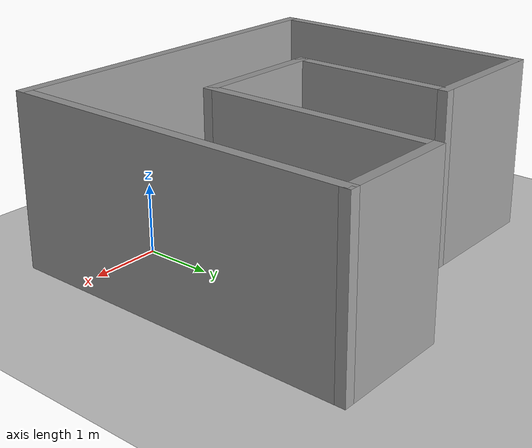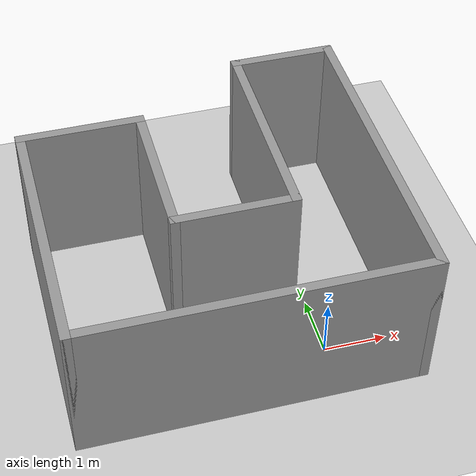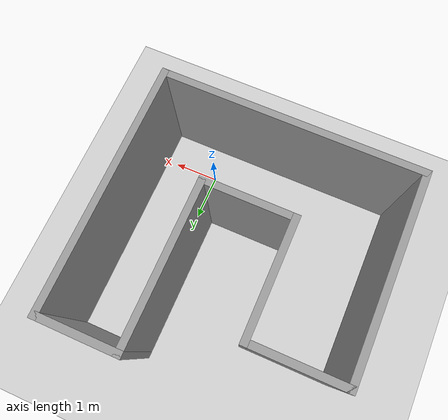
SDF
<sdf version="1.6">
 <world name="default">
  <light name="sun" type="directional">
   <pose>0 0 10 0 -0 0</pose>
   <diffuse>0.8 0.8 0.8 1</diffuse>
   <specular>0.1 0.1 0.1 1</specular>
   <attenuation>
    <range>1000</range>
    <constant>0.9</constant>
    <linear>0.01</linear>
    <quadratic>0.001</quadratic>
   </attenuation>
   <direction>-0.5 0.5 -1</direction>
  </light>
  <model name="ground_plane">
   <static>1</static>
   <link name="link">
    <collision name="collision">
     <geometry><plane><normal>0 0 1</normal><size>100 100</size></plane></geometry>
     <surface><friction><ode><mu>100</mu><mu2>50</mu2></ode></friction></surface>
    </collision>
    <visual name="visual">
     <cast_shadows>0</cast_shadows>
     <geometry><plane><normal>0 0 1</normal><size>100 100</size></plane></geometry>
     <material>
      <script><uri>file://media/materials/scripts/gazebo.material</uri><name>Gazebo/Grey</name></script>
     </material>
    </visual>
   </link>
  </model>
  <gravity>0 0 -9.8</gravity>
  <magnetic_field>6e-06 2.3e-05 -4.2e-05</magnetic_field>
  <atmosphere type="adiabatic"/>
  <physics name="default_physics" default="0" type="ode">
   <max_step_size>0.001</max_step_size>
   <real_time_factor>1</real_time_factor>
   <real_time_update_rate>1000</real_time_update_rate>
  </physics>
  <scene><ambient>0.4 0.4 0.4 1</ambient><background>0.7 0.7 0.7 1</background><shadows>1</shadows></scene>
  <spherical_coordinates>
   <surface_model>EARTH_WGS84</surface_model>
   <latitude_deg>0</latitude_deg>
   <longitude_deg>0</longitude_deg>
   <elevation>0</elevation>
   <heading_deg>0</heading_deg>
  </spherical_coordinates>
  <model name="ulisu5">
   <pose>-1.36142 1.74452 0 0 -0 0</pose>
   <link name="Wall_10">
    <collision name="Wall_10_Collision">
     <geometry><box><size>5.5 0.15 2.5</size></box></geometry>
     <pose>0 0 1.25 0 -0 0</pose>
    </collision>
    <visual name="Wall_10_Visual">
     <pose>0 0 1.25 0 -0 0</pose>
     <geometry><box><size>5.5 0.15 2.5</size></box></geometry>
     <material>
      <script><uri>file://media/materials/scripts/gazebo.material</uri><name>Gazebo/Grey</name></script>
      <ambient>1 1 1 1</ambient>
     </material>
    </visual>
    <pose>0 -2.55 0 0 -0 0</pose>
   </link>
   <link name="Wall_11">
    <collision name="Wall_11_Collision">
     <geometry><box><size>5.25 0.15 2.5</size></box></geometry>
     <pose>0 0 1.25 0 -0 0</pose>
    </collision>
    <visual name="Wall_11_Visual">
     <pose>0 0 1.25 0 -0 0</pose>
     <geometry><box><size>5.25 0.15 2.5</size></box></geometry>
     <material>
      <script><uri>file://media/materials/scripts/gazebo.material</uri><name>Gazebo/Grey</name></script>
      <ambient>1 1 1 1</ambient>
     </material>
    </visual>
    <pose>2.675 0 0 0 -0 1.5708</pose>
   </link>
   <link name="Wall_12">
    <collision name="Wall_12_Collision">
     <geometry><box><size>1.75 0.15 2.5</size></box></geometry>
     <pose>0 0 1.25 0 -0 0</pose>
    </collision>
    <visual name="Wall_12_Visual">
     <pose>0 0 1.25 0 -0 0</pose>
     <geometry><box><size>1.75 0.15 2.5</size></box></geometry>
     <material>
      <script><uri>file://media/materials/scripts/gazebo.material</uri><name>Gazebo/Grey</name></script>
      <ambient>1 1 1 1</ambient>
     </material>
    </visual>
    <pose>1.875 2.55 0 0 -0 3.14159</pose>
   </link>
   <link name="Wall_13">
    <collision name="Wall_13_Collision">
     <geometry><box><size>3.5 0.15 2.5</size></box></geometry>
     <pose>0 0 1.25 0 -0 0</pose>
    </collision>
    <visual name="Wall_13_Visual">
     <pose>0 0 1.25 0 -0 0</pose>
     <geometry><box><size>3.5 0.15 2.5</size></box></geometry>
     <material>
      <script><uri>file://media/materials/scripts/gazebo.material</uri><name>Gazebo/Grey</name></script>
      <ambient>1 1 1 1</ambient>
     </material>
    </visual>
    <pose>1.075 0.875 0 0 0 -1.5708</pose>
   </link>
   <link name="Wall_14">
    <collision name="Wall_14_Collision">
     <geometry><box><size>2 0.15 2.5</size></box></geometry>
     <pose>0 0 1.25 0 -0 0</pose>
    </collision>
    <visual name="Wall_14_Visual">
     <pose>0 0 1.25 0 -0 0</pose>
     <geometry><box><size>2 0.15 2.5</size></box></geometry>
     <material>
      <script><uri>file://media/materials/scripts/gazebo.material</uri><name>Gazebo/Grey</name></script>
      <ambient>1 1 1 1</ambient>
     </material>
    </visual>
    <pose>0.15 -0.8 0 0 -0 3.14159</pose>
   </link>
   <link name="Wall_15">
    <collision name="Wall_15_Collision">
     <geometry><box><size>2.5 0.15 2.5</size></box></geometry>
     <pose>0 0 1.25 0 -0 0</pose>
    </collision>
    <visual name="Wall_15_Visual">
     <pose>0 0 1.25 0 -0 0</pose>
     <geometry><box><size>2.5 0.15 2.5</size></box></geometry>
     <material>
      <script><uri>file://media/materials/scripts/gazebo.material</uri><name>Gazebo/Grey</name></script>
      <ambient>1 1 1 1</ambient>
     </material>
    </visual>
    <pose>-0.775 0.375 0 0 -0 1.5708</pose>
   </link>
   <link name="Wall_16">
    <collision name="Wall_16_Collision">
     <geometry><box><size>2.05 0.15 2.5</size></box></geometry>
     <pose>0 0 1.25 0 -0 0</pose>
    </collision>
    <visual name="Wall_16_Visual">
     <pose>0 0 1.25 0 -0 0</pose>
     <geometry><box><size>2.05 0.15 2.5</size></box></geometry>
     <material>
      <script><uri>file://media/materials/scripts/gazebo.material</uri><name>Gazebo/Grey</name></script>
      <ambient>1 1 1 1</ambient>
     </material>
    </visual>
    <pose>-1.725 1.55 0 0 -0 3.14159</pose>
   </link>
   <link name="Wall_9">
    <collision name="Wall_9_Collision">
     <geometry><box><size>4.25 0.15 2.5</size></box></geometry>
     <pose>0 0 1.25 0 -0 0</pose>
    </collision>
    <visual name="Wall_9_Visual">
     <pose>0 0 1.25 0 -0 0</pose>
     <geometry><box><size>4.25 0.15 2.5</size></box></geometry>
     <material>
      <script><uri>file://media/materials/scripts/gazebo.material</uri><name>Gazebo/Grey</name></script>
      <ambient>1 1 1 1</ambient>
     </material>
    </visual>
    <pose>-2.675 -0.5 0 0 0 -1.5708</pose>
   </link>
   <static>1</static>
  </model>
 </world>
</sdf>
